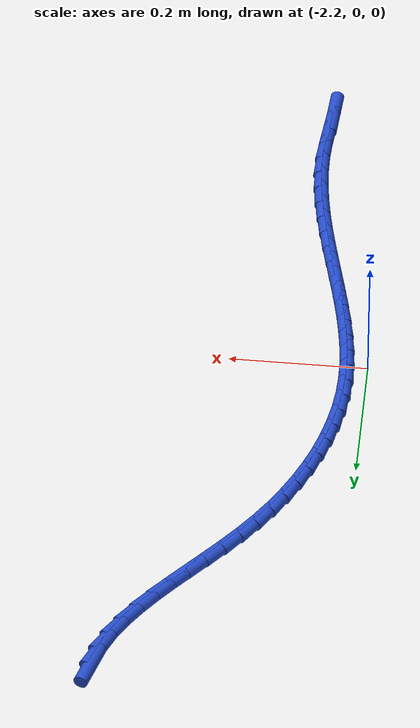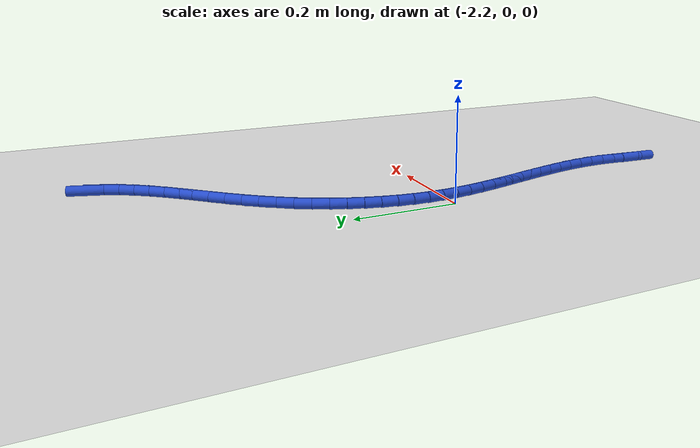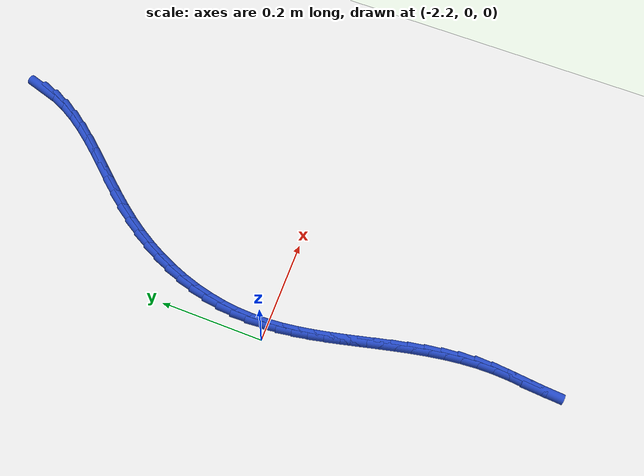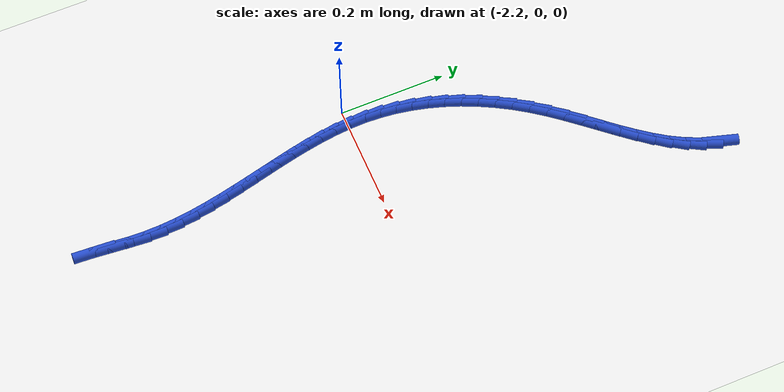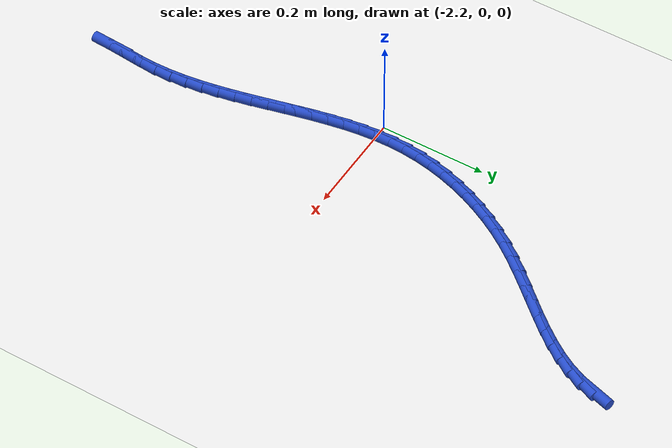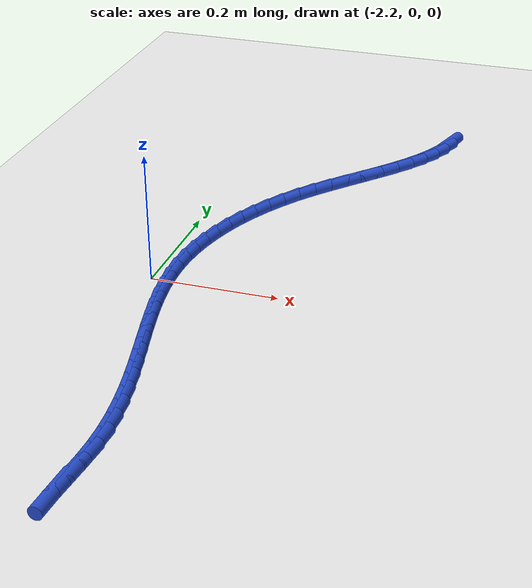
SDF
<sdf version="1.6">
 <world name="default">
  <model name="ground_plane">
   <static>1</static>
   <link name="link">
    <collision name="collision">
     <geometry><plane><normal>0 0 1</normal><size>100 100</size></plane></geometry>
     <surface><friction><ode><mu>100</mu><mu2>50</mu2></ode></friction></surface>
    </collision>
    <visual name="visual">
     <cast_shadows>0</cast_shadows>
     <geometry><plane><normal>0 0 1</normal><size>100 100</size></plane></geometry>
     <material>
      <script><uri>file://media/materials/scripts/gazebo.material</uri><name>Gazebo/WhiteGlow</name></script>
     </material>
    </visual>
   </link>
  </model>
  <model name="line">
   <link name="link_100">
    <pose>-1.872362434212539 0.6028121155281749 0.01 0 1.57 1.2794979566838414</pose>
    <collision name="collision">
     <geometry><cylinder><radius>0.01</radius><length>0.08</length></cylinder></geometry>
    </collision>
    <visual name="visual">
     <material>
      <script><name>Gazebo/Blue</name><uri>file://media/materials/scripts/gazebo.material</uri></script>
     </material>
     <geometry><cylinder><radius>0.01</radius><length>0.08</length></cylinder></geometry>
    </visual>
   </link>
   <link name="link_101">
    <pose>-1.880676949508038 0.5750811030942704 0.01 0 1.57 1.153971803095395</pose>
    <collision name="collision">
     <geometry><cylinder><radius>0.01</radius><length>0.08</length></cylinder></geometry>
    </collision>
    <visual name="visual">
     <material>
      <script><name>Gazebo/Blue</name><uri>file://media/materials/scripts/gazebo.material</uri></script>
     </material>
     <geometry><cylinder><radius>0.01</radius><length>0.08</length></cylinder></geometry>
    </visual>
   </link>
   <link name="link_102">
    <pose>-1.8925556131262906 0.5482529852103752 0.01 0 1.57 1.0517973394249438</pose>
    <collision name="collision">
     <geometry><cylinder><radius>0.01</radius><length>0.08</length></cylinder></geometry>
    </collision>
    <visual name="visual">
     <material>
      <script><name>Gazebo/Blue</name><uri>file://media/materials/scripts/gazebo.material</uri></script>
     </material>
     <geometry><cylinder><radius>0.01</radius><length>0.08</length></cylinder></geometry>
    </visual>
   </link>
   <link name="link_103">
    <pose>-1.907460457027275 0.5221605974203031 0.01 0 1.57 0.9726328954144267</pose>
    <collision name="collision">
     <geometry><cylinder><radius>0.01</radius><length>0.08</length></cylinder></geometry>
    </collision>
    <visual name="visual">
     <material>
      <script><name>Gazebo/Blue</name><uri>file://media/materials/scripts/gazebo.material</uri></script>
     </material>
     <geometry><cylinder><radius>0.01</radius><length>0.08</length></cylinder></geometry>
    </visual>
   </link>
   <link name="link_104">
    <pose>-1.9248535131709699 0.49663677526786704 0.01 0 1.57 0.9146416937424596</pose>
    <collision name="collision">
     <geometry><cylinder><radius>0.01</radius><length>0.08</length></cylinder></geometry>
    </collision>
    <visual name="visual">
     <material>
      <script><name>Gazebo/Blue</name><uri>file://media/materials/scripts/gazebo.material</uri></script>
     </material>
     <geometry><cylinder><radius>0.01</radius><length>0.08</length></cylinder></geometry>
    </visual>
   </link>
   <link name="link_105">
    <pose>-1.9441968135173529 0.4715143542968814 0.01 0 1.57 0.8756924430648456</pose>
    <collision name="collision">
     <geometry><cylinder><radius>0.01</radius><length>0.08</length></cylinder></geometry>
    </collision>
    <visual name="visual">
     <material>
      <script><name>Gazebo/Blue</name><uri>file://media/materials/scripts/gazebo.material</uri></script>
     </material>
     <geometry><cylinder><radius>0.01</radius><length>0.08</length></cylinder></geometry>
    </visual>
   </link>
   <link name="link_106">
    <pose>-1.9649523900264023 0.44662617005115923 0.01 0 1.57 0.8539913277035249</pose>
    <collision name="collision">
     <geometry><cylinder><radius>0.01</radius><length>0.08</length></cylinder></geometry>
    </collision>
    <visual name="visual">
     <material>
      <script><name>Gazebo/Blue</name><uri>file://media/materials/scripts/gazebo.material</uri></script>
     </material>
     <geometry><cylinder><radius>0.01</radius><length>0.08</length></cylinder></geometry>
    </visual>
   </link>
   <link name="link_107">
    <pose>-1.986582274658096 0.4218050580745141 0.01 0 1.57 0.8483377730705265</pose>
    <collision name="collision">
     <geometry><cylinder><radius>0.01</radius><length>0.08</length></cylinder></geometry>
    </collision>
    <visual name="visual">
     <material>
      <script><name>Gazebo/Blue</name><uri>file://media/materials/scripts/gazebo.material</uri></script>
     </material>
     <geometry><cylinder><radius>0.01</radius><length>0.08</length></cylinder></geometry>
    </visual>
   </link>
   <link name="link_108">
    <pose>-2.0085484993724125 0.3968838539107594 0.01 0 1.57 0.8581903253711188</pose>
    <collision name="collision">
     <geometry><cylinder><radius>0.01</radius><length>0.08</length></cylinder></geometry>
    </collision>
    <visual name="visual">
     <material>
      <script><name>Gazebo/Blue</name><uri>file://media/materials/scripts/gazebo.material</uri></script>
     </material>
     <geometry><cylinder><radius>0.01</radius><length>0.08</length></cylinder></geometry>
    </visual>
   </link>
   <link name="link_109">
    <pose>-2.0303130961293303 0.37169539310370914 0.01 0 1.57 0.8836465148321427</pose>
    <collision name="collision">
     <geometry><cylinder><radius>0.01</radius><length>0.08</length></cylinder></geometry>
    </collision>
    <visual name="visual">
     <material>
      <script><name>Gazebo/Blue</name><uri>file://media/materials/scripts/gazebo.material</uri></script>
     </material>
     <geometry><cylinder><radius>0.01</radius><length>0.08</length></cylinder></geometry>
    </visual>
   </link>
   <link name="link_110">
    <pose>-2.051338096888827 0.34607251119717664 0.01 0 1.57 0.9253044643127589</pose>
    <collision name="collision">
     <geometry><cylinder><radius>0.01</radius><length>0.08</length></cylinder></geometry>
    </collision>
    <visual name="visual">
     <material>
      <script><name>Gazebo/Blue</name><uri>file://media/materials/scripts/gazebo.material</uri></script>
     </material>
     <geometry><cylinder><radius>0.01</radius><length>0.08</length></cylinder></geometry>
    </visual>
   </link>
   <link name="link_111">
    <pose>-2.0710874375825217 0.3198489792795121 0.01 0 1.57 0.9785057205663354</pose>
    <collision name="collision">
     <geometry><cylinder><radius>0.01</radius><length>0.08</length></cylinder></geometry>
    </collision>
    <visual name="visual">
     <material>
      <script><name>Gazebo/Blue</name><uri>file://media/materials/scripts/gazebo.material</uri></script>
     </material>
     <geometry><cylinder><radius>0.01</radius><length>0.08</length></cylinder></geometry>
    </visual>
   </link>
   <link name="link_112">
    <pose>-2.089193127835268 0.29294115392622044 0.01 0 1.57 1.0337595224571332</pose>
    <collision name="collision">
     <geometry><cylinder><radius>0.01</radius><length>0.08</length></cylinder></geometry>
    </collision>
    <visual name="visual">
     <material>
      <script><name>Gazebo/Blue</name><uri>file://media/materials/scripts/gazebo.material</uri></script>
     </material>
     <geometry><cylinder><radius>0.01</radius><length>0.08</length></cylinder></geometry>
    </visual>
   </link>
   <link name="link_113">
    <pose>-2.105584527504796 0.26541149913369594 0.01 0 1.57 1.09020149808686</pose>
    <collision name="collision">
     <geometry><cylinder><radius>0.01</radius><length>0.08</length></cylinder></geometry>
    </collision>
    <visual name="visual">
     <material>
      <script><name>Gazebo/Blue</name><uri>file://media/materials/scripts/gazebo.material</uri></script>
     </material>
     <geometry><cylinder><radius>0.01</radius><length>0.08</length></cylinder></geometry>
    </visual>
   </link>
   <link name="link_114">
    <pose>-2.120221424247635 0.23733743004588176 0.01 0 1.57 1.1479802571029567</pose>
    <collision name="collision">
     <geometry><cylinder><radius>0.01</radius><length>0.08</length></cylinder></geometry>
    </collision>
    <visual name="visual">
     <material>
      <script><name>Gazebo/Blue</name><uri>file://media/materials/scripts/gazebo.material</uri></script>
     </material>
     <geometry><cylinder><radius>0.01</radius><length>0.08</length></cylinder></geometry>
    </visual>
   </link>
   <link name="link_115">
    <pose>-2.1330636057203125 0.20879636180672126 0.01 0 1.57 1.2072384257591717</pose>
    <collision name="collision">
     <geometry><cylinder><radius>0.01</radius><length>0.08</length></cylinder></geometry>
    </collision>
    <visual name="visual">
     <material>
      <script><name>Gazebo/Blue</name><uri>file://media/materials/scripts/gazebo.material</uri></script>
     </material>
     <geometry><cylinder><radius>0.01</radius><length>0.08</length></cylinder></geometry>
    </visual>
   </link>
   <link name="link_116">
    <pose>-2.1440708595793567 0.17986570956015874 0.01 0 1.57 1.2681067343541925</pose>
    <collision name="collision">
     <geometry><cylinder><radius>0.01</radius><length>0.08</length></cylinder></geometry>
    </collision>
    <visual name="visual">
     <material>
      <script><name>Gazebo/Blue</name><uri>file://media/materials/scripts/gazebo.material</uri></script>
     </material>
     <geometry><cylinder><radius>0.01</radius><length>0.08</length></cylinder></geometry>
    </visual>
   </link>
   <link name="link_117">
    <pose>-2.1532029734812976 0.15062288845013766 0.01 0 1.57 1.3306968926266178</pose>
    <collision name="collision">
     <geometry><cylinder><radius>0.01</radius><length>0.08</length></cylinder></geometry>
    </collision>
    <visual name="visual">
     <material>
      <script><name>Gazebo/Blue</name><uri>file://media/materials/scripts/gazebo.material</uri></script>
     </material>
     <geometry><cylinder><radius>0.01</radius><length>0.08</length></cylinder></geometry>
    </visual>
   </link>
   <link name="link_118">
    <pose>-2.1604197350826633 0.1211453136206016 0.01 0 1.57 1.3950932743290048</pose>
    <collision name="collision">
     <geometry><cylinder><radius>0.01</radius><length>0.08</length></cylinder></geometry>
    </collision>
    <visual name="visual">
     <material>
      <script><name>Gazebo/Blue</name><uri>file://media/materials/scripts/gazebo.material</uri></script>
     </material>
     <geometry><cylinder><radius>0.01</radius><length>0.08</length></cylinder></geometry>
    </visual>
   </link>
   <link name="link_119">
    <pose>-2.165680932039983 0.09151040021549382 0.01 0 1.57 1.46134360585654</pose>
    <collision name="collision">
     <geometry><cylinder><radius>0.01</radius><length>0.08</length></cylinder></geometry>
    </collision>
    <visual name="visual">
     <material>
      <script><name>Gazebo/Blue</name><uri>file://media/materials/scripts/gazebo.material</uri></script>
     </material>
     <geometry><cylinder><radius>0.01</radius><length>0.08</length></cylinder></geometry>
    </visual>
   </link>
   <link name="link_120">
    <pose>-2.168946352009784 0.06179556337875878 0.01 0 1.57 1.5294299639838467</pose>
    <collision name="collision">
     <geometry><cylinder><radius>0.01</radius><length>0.08</length></cylinder></geometry>
    </collision>
    <visual name="visual">
     <material>
      <script><name>Gazebo/Blue</name><uri>file://media/materials/scripts/gazebo.material</uri></script>
     </material>
     <geometry><cylinder><radius>0.01</radius><length>0.08</length></cylinder></geometry>
    </visual>
   </link>
   <link name="link_121">
    <pose>-2.1701763598714137 0.032078031756193344 0.01 0 1.57 -1.5454250965584184</pose>
    <collision name="collision">
     <geometry><cylinder><radius>0.01</radius><length>0.08</length></cylinder></geometry>
    </collision>
    <visual name="visual">
     <material>
      <script><name>Gazebo/Blue</name><uri>file://media/materials/scripts/gazebo.material</uri></script>
     </material>
     <geometry><cylinder><radius>0.01</radius><length>0.08</length></cylinder></geometry>
    </visual>
   </link>
   <link name="link_122">
    <pose>-2.169423364460874 0.002405294997141834 0.01 0 1.57 -1.4869441534070762</pose>
    <collision name="collision">
     <geometry><cylinder><radius>0.01</radius><length>0.08</length></cylinder></geometry>
    </collision>
    <visual name="visual">
     <material>
      <script><name>Gazebo/Blue</name><uri>file://media/materials/scripts/gazebo.material</uri></script>
     </material>
     <geometry><cylinder><radius>0.01</radius><length>0.08</length></cylinder></geometry>
    </visual>
   </link>
   <link name="link_123">
    <pose>-2.1669319313066637 -0.027237242228923646 0.01 0 1.57 -1.437915203730476</pose>
    <collision name="collision">
     <geometry><cylinder><radius>0.01</radius><length>0.08</length></cylinder></geometry>
    </collision>
    <visual name="visual">
     <material>
      <script><name>Gazebo/Blue</name><uri>file://media/materials/scripts/gazebo.material</uri></script>
     </material>
     <geometry><cylinder><radius>0.01</radius><length>0.08</length></cylinder></geometry>
    </visual>
   </link>
   <link name="link_124">
    <pose>-2.162970695272062 -0.05687195194844635 0.01 0 1.57 -1.3984087008839639</pose>
    <collision name="collision">
     <geometry><cylinder><radius>0.01</radius><length>0.08</length></cylinder></geometry>
    </collision>
    <visual name="visual">
     <material>
      <script><name>Gazebo/Blue</name><uri>file://media/materials/scripts/gazebo.material</uri></script>
     </material>
     <geometry><cylinder><radius>0.01</radius><length>0.08</length></cylinder></geometry>
    </visual>
   </link>
   <link name="link_125">
    <pose>-2.1578082912203516 -0.08652120618787033 0.01 0 1.57 -1.3682980045369384</pose>
    <collision name="collision">
     <geometry><cylinder><radius>0.01</radius><length>0.08</length></cylinder></geometry>
    </collision>
    <visual name="visual">
     <material>
      <script><name>Gazebo/Blue</name><uri>file://media/materials/scripts/gazebo.material</uri></script>
     </material>
     <geometry><cylinder><radius>0.01</radius><length>0.08</length></cylinder></geometry>
    </visual>
   </link>
   <link name="link_126">
    <pose>-2.151713354014813 -0.11620737697363726 0.01 0 1.57 -1.3473675549950093</pose>
    <collision name="collision">
     <geometry><cylinder><radius>0.01</radius><length>0.08</length></cylinder></geometry>
    </collision>
    <visual name="visual">
     <material>
      <script><name>Gazebo/Blue</name><uri>file://media/materials/scripts/gazebo.material</uri></script>
     </material>
     <geometry><cylinder><radius>0.01</radius><length>0.08</length></cylinder></geometry>
    </visual>
   </link>
   <link name="link_127">
    <pose>-2.144954518518728 -0.14595283633219108 0.01 0 1.57 -1.3353911460991401</pose>
    <collision name="collision">
     <geometry><cylinder><radius>0.01</radius><length>0.08</length></cylinder></geometry>
    </collision>
    <visual name="visual">
     <material>
      <script><name>Gazebo/Blue</name><uri>file://media/materials/scripts/gazebo.material</uri></script>
     </material>
     <geometry><cylinder><radius>0.01</radius><length>0.08</length></cylinder></geometry>
    </visual>
   </link>
   <link name="link_128">
    <pose>-2.137800419595378 -0.1757799562899751 0.01 0 1.57 -1.3321814255174385</pose>
    <collision name="collision">
     <geometry><cylinder><radius>0.01</radius><length>0.08</length></cylinder></geometry>
    </collision>
    <visual name="visual">
     <material>
      <script><name>Gazebo/Blue</name><uri>file://media/materials/scripts/gazebo.material</uri></script>
     </material>
     <geometry><cylinder><radius>0.01</radius><length>0.08</length></cylinder></geometry>
    </visual>
   </link>
   <link name="link_129">
    <pose>-2.1305196921080434 -0.20571110887343255 0.01 0 1.57 -1.3376149091486735</pose>
    <collision name="collision">
     <geometry><cylinder><radius>0.01</radius><length>0.08</length></cylinder></geometry>
    </collision>
    <visual name="visual">
     <material>
      <script><name>Gazebo/Blue</name><uri>file://media/materials/scripts/gazebo.material</uri></script>
     </material>
     <geometry><cylinder><radius>0.01</radius><length>0.08</length></cylinder></geometry>
    </visual>
   </link>
   <link name="link_130">
    <pose>-2.1233809709200067 -0.2357686661090067 0.01 0 1.57 -1.351636508410822</pose>
    <collision name="collision">
     <geometry><cylinder><radius>0.01</radius><length>0.08</length></cylinder></geometry>
    </collision>
    <visual name="visual">
     <material>
      <script><name>Gazebo/Blue</name><uri>file://media/materials/scripts/gazebo.material</uri></script>
     </material>
     <geometry><cylinder><radius>0.01</radius><length>0.08</length></cylinder></geometry>
    </visual>
   </link>
   <link name="link_131">
    <pose>-2.1166528908945477 -0.2659750000231408 0.01 0 1.57 -1.3742458080117874</pose>
    <collision name="collision">
     <geometry><cylinder><radius>0.01</radius><length>0.08</length></cylinder></geometry>
    </collision>
    <visual name="visual">
     <material>
      <script><name>Gazebo/Blue</name><uri>file://media/materials/scripts/gazebo.material</uri></script>
     </material>
     <geometry><cylinder><radius>0.01</radius><length>0.08</length></cylinder></geometry>
    </visual>
   </link>
   <link name="link_132">
    <pose>-2.110604086894949 -0.2963524826422788 0.01 0 1.57 -1.4054654191023783</pose>
    <collision name="collision">
     <geometry><cylinder><radius>0.01</radius><length>0.08</length></cylinder></geometry>
    </collision>
    <visual name="visual">
     <material>
      <script><name>Gazebo/Blue</name><uri>file://media/materials/scripts/gazebo.material</uri></script>
     </material>
     <geometry><cylinder><radius>0.01</radius><length>0.08</length></cylinder></geometry>
    </visual>
   </link>
   <link name="link_133">
    <pose>-2.105503193784491 -0.32692348599286236 0.01 0 1.57 -1.4452906280134885</pose>
    <collision name="collision">
     <geometry><cylinder><radius>0.01</radius><length>0.08</length></cylinder></geometry>
    </collision>
    <visual name="visual">
     <material>
      <script><name>Gazebo/Blue</name><uri>file://media/materials/scripts/gazebo.material</uri></script>
     </material>
     <geometry><cylinder><radius>0.01</radius><length>0.08</length></cylinder></geometry>
    </visual>
   </link>
   <link name="link_134">
    <pose>-2.101618846426456 -0.35771038210133566 0.01 0 1.57 -1.4936202054680252</pose>
    <collision name="collision">
     <geometry><cylinder><radius>0.01</radius><length>0.08</length></cylinder></geometry>
    </collision>
    <visual name="visual">
     <material>
      <script><name>Gazebo/Blue</name><uri>file://media/materials/scripts/gazebo.material</uri></script>
     </material>
     <geometry><cylinder><radius>0.01</radius><length>0.08</length></cylinder></geometry>
    </visual>
   </link>
   <link name="link_135">
    <pose>-2.099219679684124 -0.3887355429941418 0.01 0 1.57 -1.5501716407677153</pose>
    <collision name="collision">
     <geometry><cylinder><radius>0.01</radius><length>0.08</length></cylinder></geometry>
    </collision>
    <visual name="visual">
     <material>
      <script><name>Gazebo/Blue</name><uri>file://media/materials/scripts/gazebo.material</uri></script>
     </material>
     <geometry><cylinder><radius>0.01</radius><length>0.08</length></cylinder></geometry>
    </visual>
   </link>
   <link name="link_136">
    <pose>-2.098574328420776 -0.420021340697724 0.01 0 1.57 1.5285464167596114</pose>
    <collision name="collision">
     <geometry><cylinder><radius>0.01</radius><length>0.08</length></cylinder></geometry>
    </collision>
    <visual name="visual">
     <material>
      <script><name>Gazebo/Blue</name><uri>file://media/materials/scripts/gazebo.material</uri></script>
     </material>
     <geometry><cylinder><radius>0.01</radius><length>0.08</length></cylinder></geometry>
    </visual>
   </link>
   <link name="link_137">
    <pose>-2.0999084029349797 -0.4515783456679242 0.01 0 1.57 1.4839094309846748</pose>
    <collision name="collision">
     <geometry><cylinder><radius>0.01</radius><length>0.08</length></cylinder></geometry>
    </collision>
    <visual name="visual">
     <material>
      <script><name>Gazebo/Blue</name><uri>file://media/materials/scripts/gazebo.material</uri></script>
     </material>
     <geometry><cylinder><radius>0.01</radius><length>0.08</length></cylinder></geometry>
    </visual>
   </link>
   <link name="link_138">
    <pose>-2.1026630143249054 -0.4832019414606953 0.01 0 1.57 1.4774141755505819</pose>
    <collision name="collision">
     <geometry><cylinder><radius>0.01</radius><length>0.08</length></cylinder></geometry>
    </collision>
    <visual name="visual">
     <material>
      <script><name>Gazebo/Blue</name><uri>file://media/materials/scripts/gazebo.material</uri></script>
     </material>
     <geometry><cylinder><radius>0.01</radius><length>0.08</length></cylinder></geometry>
    </visual>
   </link>
   <link name="link_139">
    <pose>-2.105594181353657 -0.514499591879303 0.01 0 1.57 1.510661492537979</pose>
    <collision name="collision">
     <geometry><cylinder><radius>0.01</radius><length>0.08</length></cylinder></geometry>
    </collision>
    <visual name="visual">
     <material>
      <script><name>Gazebo/Blue</name><uri>file://media/materials/scripts/gazebo.material</uri></script>
     </material>
     <geometry><cylinder><radius>0.01</radius><length>0.08</length></cylinder></geometry>
    </visual>
   </link>
  </model>
 </world>
</sdf>
